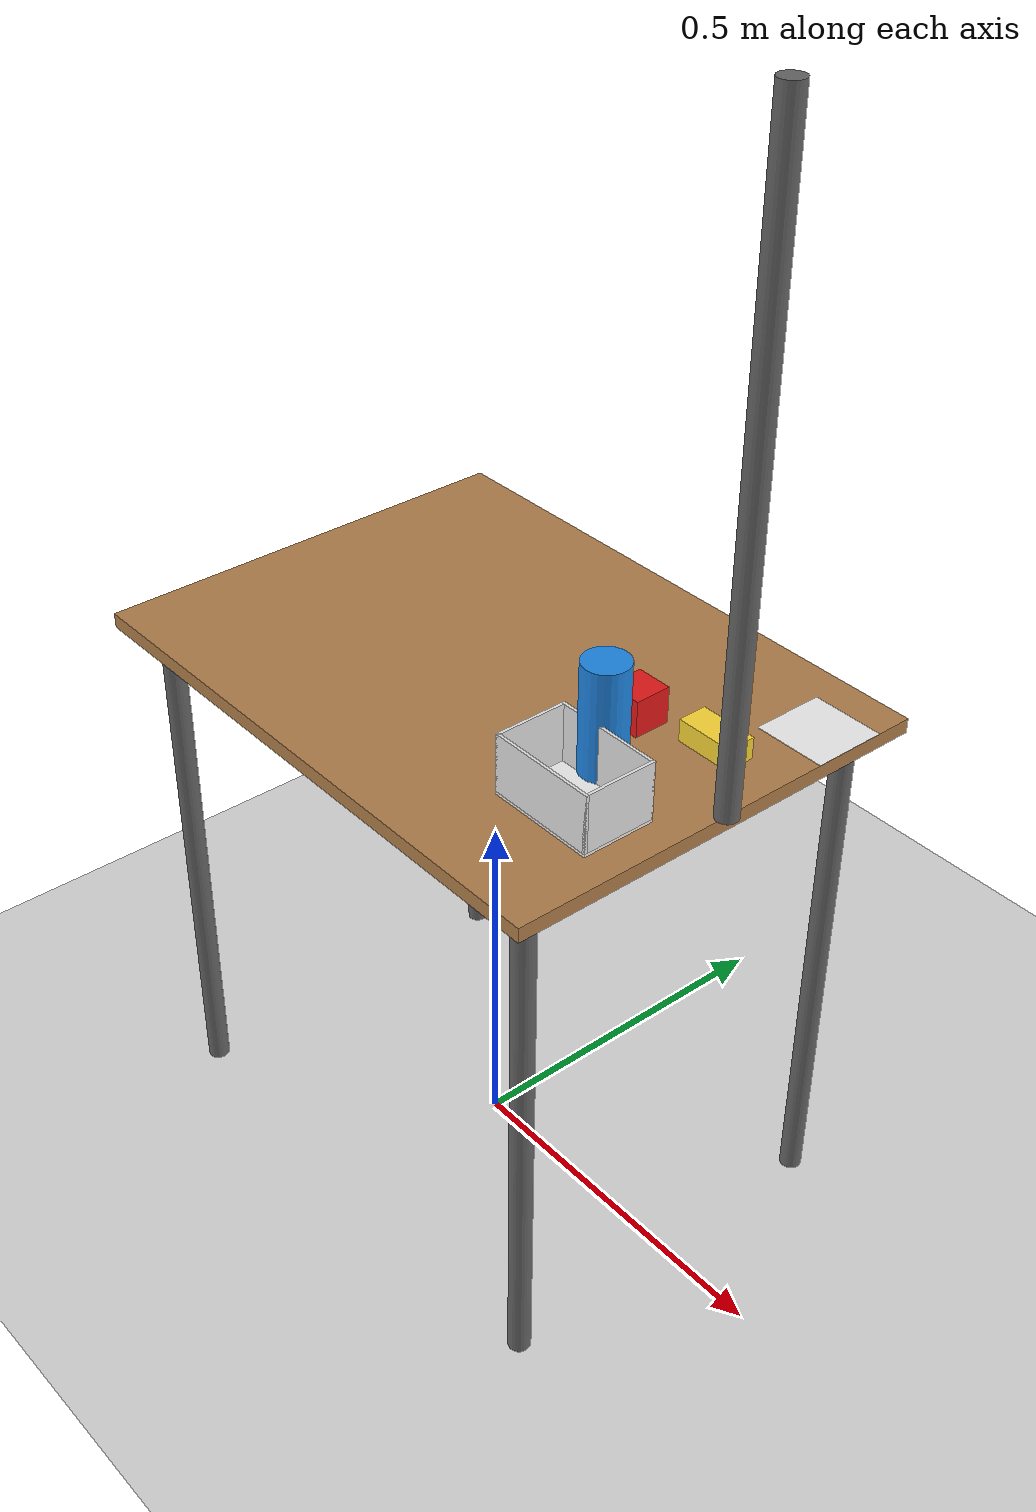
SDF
<?xml version="1.0"?>
<sdf version="1.9">
  <world name="aria_workspace">

    <!-- ═══ Physics Configuration ═══ -->
    <physics name="dart_physics" type="dart">
      <max_step_size>0.001</max_step_size>
      <real_time_factor>1.0</real_time_factor>
      <real_time_update_rate>1000</real_time_update_rate>
    </physics>

    <!-- ═══ Required System Plugins ═══ -->
    <!-- Physics engine -->
    <plugin filename="gz-sim-physics-system" name="gz::sim::systems::Physics"/>
    <!-- User interactive commands -->
    <plugin filename="gz-sim-user-commands-system" name="gz::sim::systems::UserCommands"/>
    <!-- Scene broadcaster for visualization -->
    <plugin filename="gz-sim-scene-broadcaster-system" name="gz::sim::systems::SceneBroadcaster"/>
    <!-- Sensor processing -->
    <plugin filename="gz-sim-sensors-system" name="gz::sim::systems::Sensors">
      <render_engine>ogre2</render_engine>
    </plugin>
    <!-- IMU system -->
    <plugin filename="gz-sim-imu-system" name="gz::sim::systems::Imu"/>
    <!-- Contact system -->
    <plugin filename="gz-sim-contact-system" name="gz::sim::systems::Contact"/>

    <!-- ═══ Gravity ═══ -->
    <gravity>0 0 -9.81</gravity>

    <!-- ═══ Atmosphere ═══ -->
    <atmosphere type="adiabatic"/>

    <!-- ═══════════════════════════════════════════════════════════
         LIGHTING — Clean directional, no shadows for Stage 1
         ═══════════════════════════════════════════════════════════ -->
    <light type="directional" name="main_light">
      <pose>0 0 5 0 0 0</pose>
      <diffuse>0.9 0.9 0.9 1</diffuse>
      <specular>0.3 0.3 0.3 1</specular>
      <direction>0 0.2 -1</direction>
      <cast_shadows>false</cast_shadows>
    </light>

    <light type="directional" name="fill_light">
      <pose>-2 -2 3 0 0 0</pose>
      <diffuse>0.4 0.4 0.4 1</diffuse>
      <specular>0.1 0.1 0.1 1</specular>
      <direction>0.5 0.5 -0.7</direction>
      <cast_shadows>false</cast_shadows>
    </light>

    <!-- ═══════════════════════════════════════════════════════════
         GROUND PLANE
         ═══════════════════════════════════════════════════════════ -->
    <model name="ground_plane">
      <static>true</static>
      <link name="ground_link">
        <collision name="ground_collision">
          <geometry>
            <plane>
              <normal>0 0 1</normal>
              <size>10 10</size>
            </plane>
          </geometry>
        </collision>
        <visual name="ground_visual">
          <geometry>
            <plane>
              <normal>0 0 1</normal>
              <size>10 10</size>
            </plane>
          </geometry>
          <material>
            <ambient>0.85 0.85 0.85 1</ambient>
            <diffuse>0.85 0.85 0.85 1</diffuse>
          </material>
        </visual>
      </link>
    </model>

    <model name="table">
      <static>true</static>
      <pose>0 0 0 0 0 0</pose>

      <!-- Table top: 80×60×2cm, at 75cm height -->
      <link name="table_top">
        <pose>0 0 0.75 0 0 0</pose>
        <collision name="top_collision">
          <geometry>
            <box><size>0.80 0.60 0.02</size></box>
          </geometry>
          <surface>
            <friction>
              <ode><mu>0.5</mu><mu2>0.5</mu2></ode>
            </friction>
          </surface>
        </collision>
        <visual name="top_visual">
          <geometry>
            <box><size>0.80 0.60 0.02</size></box>
          </geometry>
          <material>
            <ambient>0.6 0.4 0.2 1</ambient>
            <diffuse>0.7 0.5 0.3 1</diffuse>
            <specular>0.1 0.1 0.1 1</specular>
          </material>
        </visual>
      </link>

      <!-- Table legs: 4 legs, each 3cm diameter, 74cm tall -->
      <link name="leg_front_left">
        <pose>0.35 0.25 0.37 0 0 0</pose>
        <collision name="collision"><geometry><cylinder><radius>0.015</radius><length>0.74</length></cylinder></geometry></collision>
        <visual name="visual"><geometry><cylinder><radius>0.015</radius><length>0.74</length></cylinder></geometry>
          <material><ambient>0.3 0.3 0.3 1</ambient><diffuse>0.4 0.4 0.4 1</diffuse></material>
        </visual>
      </link>
      <link name="leg_front_right">
        <pose>0.35 -0.25 0.37 0 0 0</pose>
        <collision name="collision"><geometry><cylinder><radius>0.015</radius><length>0.74</length></cylinder></geometry></collision>
        <visual name="visual"><geometry><cylinder><radius>0.015</radius><length>0.74</length></cylinder></geometry>
          <material><ambient>0.3 0.3 0.3 1</ambient><diffuse>0.4 0.4 0.4 1</diffuse></material>
        </visual>
      </link>
      <link name="leg_back_left">
        <pose>-0.35 0.25 0.37 0 0 0</pose>
        <collision name="collision"><geometry><cylinder><radius>0.015</radius><length>0.74</length></cylinder></geometry></collision>
        <visual name="visual"><geometry><cylinder><radius>0.015</radius><length>0.74</length></cylinder></geometry>
          <material><ambient>0.3 0.3 0.3 1</ambient><diffuse>0.4 0.4 0.4 1</diffuse></material>
        </visual>
      </link>
      <link name="leg_back_right">
        <pose>-0.35 -0.25 0.37 0 0 0</pose>
        <collision name="collision"><geometry><cylinder><radius>0.015</radius><length>0.74</length></cylinder></geometry></collision>
        <visual name="visual"><geometry><cylinder><radius>0.015</radius><length>0.74</length></cylinder></geometry>
          <material><ambient>0.3 0.3 0.3 1</ambient><diffuse>0.4 0.4 0.4 1</diffuse></material>
        </visual>
      </link>

      <!-- Fixed joints connecting legs to table top -->
      <joint name="leg_fl_joint" type="fixed"><parent>table_top</parent><child>leg_front_left</child></joint>
      <joint name="leg_fr_joint" type="fixed"><parent>table_top</parent><child>leg_front_right</child></joint>
      <joint name="leg_bl_joint" type="fixed"><parent>table_top</parent><child>leg_back_left</child></joint>
      <joint name="leg_br_joint" type="fixed"><parent>table_top</parent><child>leg_back_right</child></joint>
    </model>

    <model name="camera_stand">
      <static>true</static>
      <pose>0.40 0.0 0.76 0 0 0</pose>
      <link name="stand_pole">
        <pose>0 0 0.40 0 0 0</pose>
        <collision name="collision">
          <geometry><cylinder><radius>0.015</radius><length>0.80</length></cylinder></geometry>
        </collision>
        <visual name="visual">
          <geometry><cylinder><radius>0.015</radius><length>0.80</length></cylinder></geometry>
          <material>
            <ambient>0.3 0.3 0.3 1</ambient>
            <diffuse>0.4 0.4 0.4 1</diffuse>
          </material>
        </visual>
      </link>
    </model>

    <!-- Red Cube: 50mm, 50g, positioned in workspace -->
    <model name="red_cube">
      <pose>0.20 0.05 0.785 0 0 0</pose>
      <link name="body">
        <inertial>
          <mass>0.05</mass>
          <inertia>
            <ixx>2.083e-5</ixx><ixy>0</ixy><ixz>0</ixz>
            <iyy>2.083e-5</iyy><iyz>0</iyz>
            <izz>2.083e-5</izz>
          </inertia>
        </inertial>
        <collision name="collision">
          <geometry><box><size>0.05 0.05 0.05</size></box></geometry>
          <surface>
            <friction><ode><mu>0.5</mu><mu2>0.5</mu2></ode></friction>
          </surface>
        </collision>
        <visual name="visual">
          <geometry><box><size>0.05 0.05 0.05</size></box></geometry>
          <material>
            <ambient>0.9 0.1 0.1 1</ambient>
            <diffuse>0.9 0.1 0.1 1</diffuse>
            <specular>0.4 0.1 0.1 1</specular>
          </material>
        </visual>
      </link>
    </model>

    <!-- Blue Cylinder: r=30mm, h=150mm, 200g -->
    <model name="blue_cylinder">
      <pose>0.25 -0.05 0.835 0 0 0</pose>
      <link name="body">
        <inertial>
          <mass>0.2</mass>
          <inertia>
            <ixx>4.275e-4</ixx><ixy>0</ixy><ixz>0</ixz>
            <iyy>4.275e-4</iyy><iyz>0</iyz>
            <izz>9.0e-5</izz>
          </inertia>
        </inertial>
        <collision name="collision">
          <geometry><cylinder><radius>0.03</radius><length>0.15</length></cylinder></geometry>
          <surface>
            <friction><ode><mu>0.5</mu><mu2>0.5</mu2></ode></friction>
          </surface>
        </collision>
        <visual name="visual">
          <geometry><cylinder><radius>0.03</radius><length>0.15</length></cylinder></geometry>
          <material>
            <ambient>0.12 0.53 0.90 1</ambient>
            <diffuse>0.12 0.53 0.90 1</diffuse>
            <specular>0.3 0.3 0.3 1</specular>
          </material>
        </visual>
      </link>
    </model>

    <!-- Green Sphere: r=20mm, 30g -->
    <model name="green_sphere">
      <pose>0.18 -0.08 0.78 0 0 0</pose>
      <link name="body">
        <inertial>
          <mass>0.03</mass>
          <inertia>
            <ixx>4.8e-6</ixx><ixy>0</ixy><ixz>0</ixz>
            <iyy>4.8e-6</iyy><iyz>0</iyz>
            <izz>4.8e-6</izz>
          </inertia>
        </inertial>
        <collision name="collision">
          <geometry><sphere><radius>0.02</radius></sphere></geometry>
          <surface>
            <friction><ode><mu>0.5</mu><mu2>0.5</mu2></ode></friction>
          </surface>
        </collision>
        <visual name="visual">
          <geometry><sphere><radius>0.02</radius></sphere></geometry>
          <material>
            <ambient>0.26 0.63 0.28 1</ambient>
            <diffuse>0.26 0.63 0.28 1</diffuse>
            <specular>0.2 0.2 0.2 1</specular>
          </material>
        </visual>
      </link>
    </model>

    <!-- Yellow Block: 80×40×30mm, 100g -->
    <model name="yellow_block">
      <pose>0.30 0.08 0.775 0 0 0</pose>
      <link name="body">
        <inertial>
          <mass>0.1</mass>
          <inertia>
            <ixx>2.083e-5</ixx><ixy>0</ixy><ixz>0</ixz>
            <iyy>6.083e-5</iyy><iyz>0</iyz>
            <izz>6.667e-5</izz>
          </inertia>
        </inertial>
        <collision name="collision">
          <geometry><box><size>0.08 0.04 0.03</size></box></geometry>
          <surface>
            <friction><ode><mu>0.5</mu><mu2>0.5</mu2></ode></friction>
          </surface>
        </collision>
        <visual name="visual">
          <geometry><box><size>0.08 0.04 0.03</size></box></geometry>
          <material>
            <ambient>0.99 0.85 0.21 1</ambient>
            <diffuse>0.99 0.85 0.21 1</diffuse>
            <specular>0.3 0.3 0.3 1</specular>
          </material>
        </visual>
      </link>
    </model>

    <!-- White Box: target container, open-top 150×100×80mm, 100g -->
    <model name="white_box">
      <static>true</static>
      <pose>0.28 -0.12 0.76 0 0 0</pose>

      <!-- Bottom -->
      <link name="bottom">
        <pose>0 0 0.002 0 0 0</pose>
        <collision name="collision"><geometry><box><size>0.15 0.10 0.004</size></box></geometry></collision>
        <visual name="visual"><geometry><box><size>0.15 0.10 0.004</size></box></geometry>
          <material><ambient>0.95 0.95 0.95 1</ambient><diffuse>0.95 0.95 0.95 1</diffuse></material>
        </visual>
      </link>
      <!-- Front wall -->
      <link name="front_wall">
        <pose>0.073 0 0.042 0 0 0</pose>
        <collision name="collision"><geometry><box><size>0.004 0.10 0.08</size></box></geometry></collision>
        <visual name="visual"><geometry><box><size>0.004 0.10 0.08</size></box></geometry>
          <material><ambient>0.90 0.90 0.90 1</ambient><diffuse>0.90 0.90 0.90 1</diffuse></material>
        </visual>
      </link>
      <!-- Back wall -->
      <link name="back_wall">
        <pose>-0.073 0 0.042 0 0 0</pose>
        <collision name="collision"><geometry><box><size>0.004 0.10 0.08</size></box></geometry></collision>
        <visual name="visual"><geometry><box><size>0.004 0.10 0.08</size></box></geometry>
          <material><ambient>0.90 0.90 0.90 1</ambient><diffuse>0.90 0.90 0.90 1</diffuse></material>
        </visual>
      </link>
      <!-- Left wall -->
      <link name="left_wall">
        <pose>0 0.048 0.042 0 0 0</pose>
        <collision name="collision"><geometry><box><size>0.15 0.004 0.08</size></box></geometry></collision>
        <visual name="visual"><geometry><box><size>0.15 0.004 0.08</size></box></geometry>
          <material><ambient>0.90 0.90 0.90 1</ambient><diffuse>0.90 0.90 0.90 1</diffuse></material>
        </visual>
      </link>
      <!-- Right wall -->
      <link name="right_wall">
        <pose>0 -0.048 0.042 0 0 0</pose>
        <collision name="collision"><geometry><box><size>0.15 0.004 0.08</size></box></geometry></collision>
        <visual name="visual"><geometry><box><size>0.15 0.004 0.08</size></box></geometry>
          <material><ambient>0.90 0.90 0.90 1</ambient><diffuse>0.90 0.90 0.90 1</diffuse></material>
        </visual>
      </link>

      <joint name="j_front"  type="fixed"><parent>bottom</parent><child>front_wall</child></joint>
      <joint name="j_back"   type="fixed"><parent>bottom</parent><child>back_wall</child></joint>
      <joint name="j_left"   type="fixed"><parent>bottom</parent><child>left_wall</child></joint>
      <joint name="j_right"  type="fixed"><parent>bottom</parent><child>right_wall</child></joint>
    </model>

    <model name="apriltag_board">
      <static>true</static>
      <pose>0.35 0.20 0.76 0 0 0</pose>
      <link name="board">
        <visual name="visual">
          <geometry><box><size>0.10 0.10 0.001</size></box></geometry>
          <material>
            <ambient>0.95 0.95 0.95 1</ambient>
            <diffuse>0.95 0.95 0.95 1</diffuse>
          </material>
        </visual>
        <collision name="collision">
          <geometry><box><size>0.10 0.10 0.001</size></box></geometry>
        </collision>
      </link>
    </model>

  </world>
</sdf>
